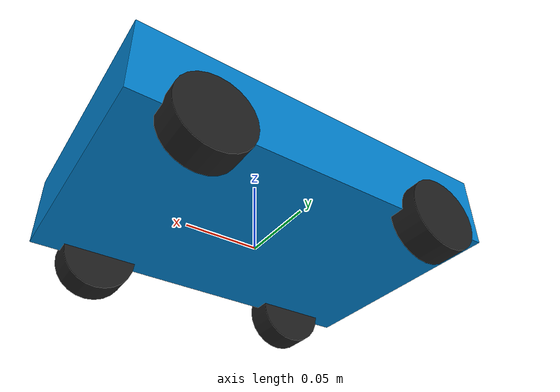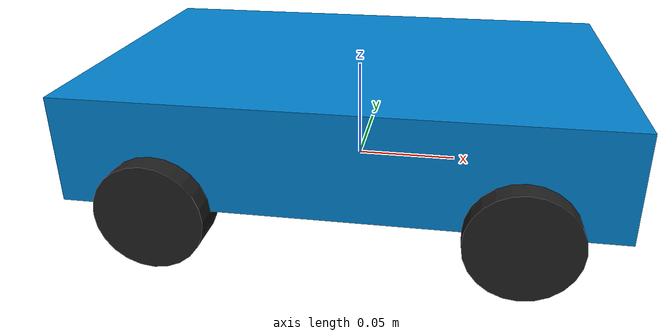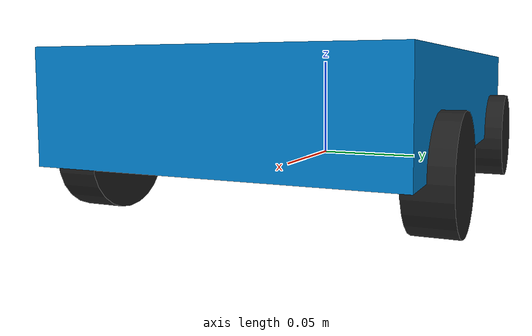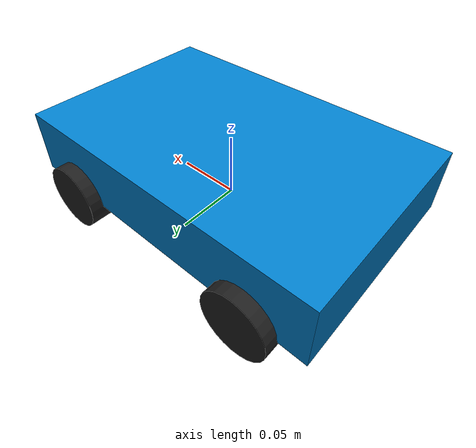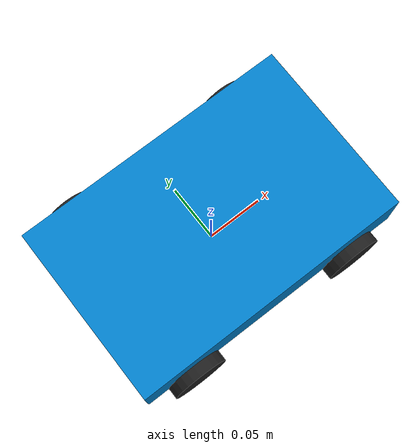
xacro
<?xml version="1.0"?>
<robot name="robot_base" xmlns:xacro="http://www.ros.org/wiki/xacro">
    <xacro:property name="PI" value="3.1415926"/>
    <xacro:property name="base_link_width" value="0.16" />
    <xacro:property name="base_link_length" value="0.25" />
    <xacro:property name="base_link_height" value="0.05" />
    <xacro:property name="earth_space" value="0.025" />

    <link name="base_footprint">
      <visual>
        <geometry>
           <box size="0.001 0.001 0.001" />
        </geometry>
      </visual>
    </link>

    <link name="base_link">
        <visual>
            <geometry>
                <box size="${base_link_length} ${base_link_width} ${base_link_height}"/>
            </geometry>
            <origin rpy="0 0 0" xyz="0 0 0"/>
            <material name="blue">
                <color rgba="0 0.5 0.8 1"/>
            </material>
        </visual>
    </link>

     <joint name="base_link2base_footprint" type="fixed">
      <parent link="base_footprint" />
      <child link="base_link" />
      <origin xyz="0 0 ${earth_space + 0.005}" />
    </joint>

    <xacro:property name="wheel_radius" value="0.025" />
    <xacro:property name="wheel_length" value="0.02" />
    <xacro:property name="wheel_offset" value="0.08" />

    <xacro:macro name="add_front_wheels" params="name flag">
    <link name="${name}_wheel">
        <visual>
          <geometry>
            <cylinder radius="${wheel_radius}" length="${wheel_length}" />
          </geometry>
          <origin xyz="0.0 0.0 0.0" rpy="${PI/2} 0.0 0.0" />
          <material name="black" />
        </visual>
    </link>

    <joint name="${name}_wheel2base_link" type="continuous">
        <parent link="base_link" />
        <child link="${name}_wheel" />
        <origin xyz="${wheel_offset} ${flag * base_link_width/2} ${-(earth_space + base_link_height / 2 - wheel_radius) }" />
        <axis xyz="0 1 0" />
    </joint>
    </xacro:macro>
    <xacro:add_front_wheels name="left_front" flag="1" />
    <xacro:add_front_wheels name="right_front" flag="-1" />

    <xacro:macro name="add_back_wheels" params="name flag">
    <link name="${name}_wheel">
        <visual>
          <geometry>
            <cylinder radius="${wheel_radius}" length="${wheel_length}" />
          </geometry>
          <origin xyz="0.0 0.0 0.0" rpy="${PI/2} 0.0 0.0" />
          <material name="black" />
        </visual>
    </link>

    <joint name="${name}_wheel2base_link" type="continuous">
        <parent link="base_link" />
        <child link="${name}_wheel" />
        <origin xyz="${-wheel_offset} ${flag * base_link_width/2} ${-(earth_space + base_link_height / 2 - wheel_radius) }" />
        <axis xyz="0 1 0" />
    </joint>
    </xacro:macro>
    <xacro:add_back_wheels name="left_back" flag="1" />
    <xacro:add_back_wheels name="right_back" flag="-1" />

    <!--simplified_wheel_xacro-->

</robot>
